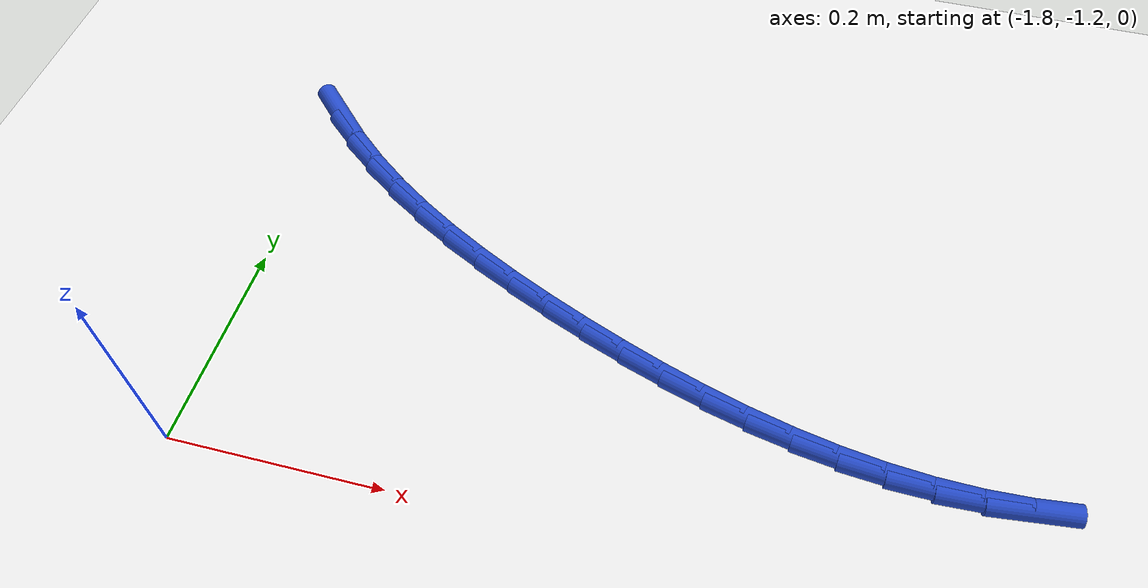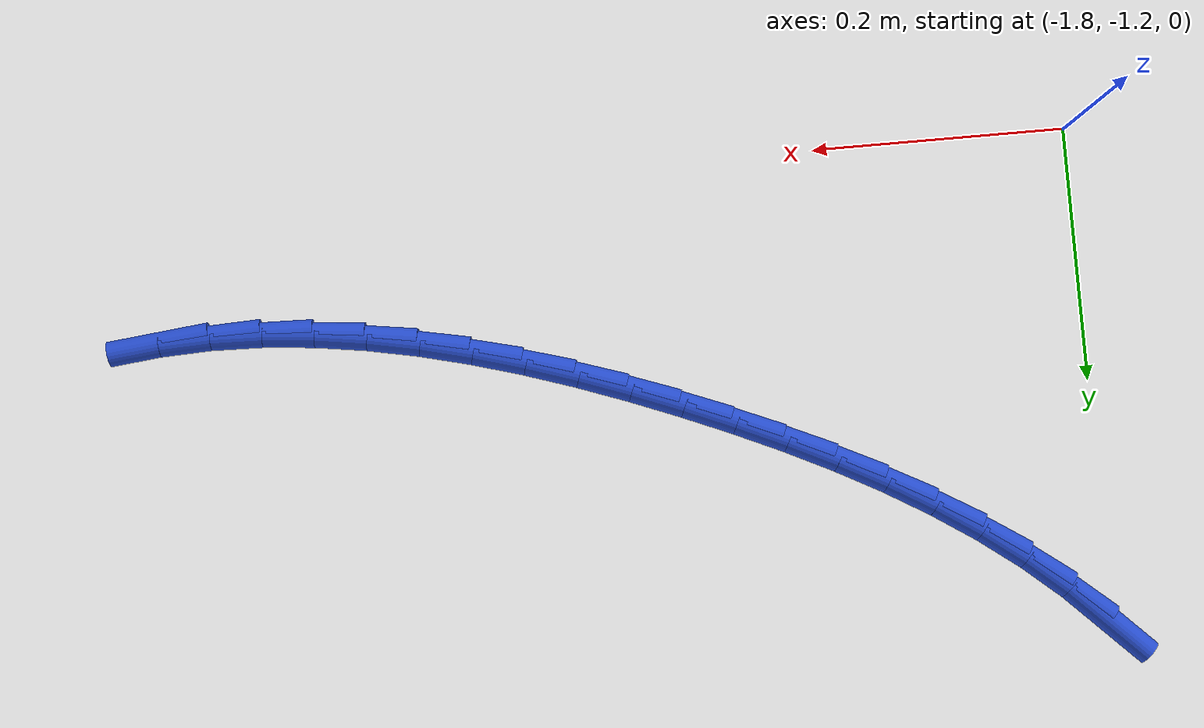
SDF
<sdf version="1.6">
 <world name="default">
  <model name="ground_plane">
   <static>1</static>
   <link name="link">
    <collision name="collision">
     <geometry><plane><normal>0 0 1</normal><size>100 100</size></plane></geometry>
     <surface><friction><ode><mu>100</mu><mu2>50</mu2></ode></friction></surface>
    </collision>
    <visual name="visual">
     <cast_shadows>0</cast_shadows>
     <geometry><plane><normal>0 0 1</normal><size>100 100</size></plane></geometry>
     <material>
      <script><uri>file://media/materials/scripts/gazebo.material</uri><name>Gazebo/WhiteGlow</name></script>
     </material>
    </visual>
   </link>
  </model>
  <model name="line">
   <link name="link_101">
    <pose>-1.7968484269513763 -0.8116748849108246 0.01 0 1.57 -0.7779558724061524</pose>
    <collision name="collision">
     <geometry><cylinder><radius>0.01</radius><length>0.08</length></cylinder></geometry>
    </collision>
    <visual name="visual">
     <material>
      <script><name>Gazebo/Blue</name><uri>file://media/materials/scripts/gazebo.material</uri></script>
     </material>
     <geometry><cylinder><radius>0.01</radius><length>0.08</length></cylinder></geometry>
    </visual>
   </link>
   <link name="link_102">
    <pose>-1.7681160434919756 -0.8399827504016025 0.01 0 1.57 -0.70516660313305</pose>
    <collision name="collision">
     <geometry><cylinder><radius>0.01</radius><length>0.08</length></cylinder></geometry>
    </collision>
    <visual name="visual">
     <material>
      <script><name>Gazebo/Blue</name><uri>file://media/materials/scripts/gazebo.material</uri></script>
     </material>
     <geometry><cylinder><radius>0.01</radius><length>0.08</length></cylinder></geometry>
    </visual>
   </link>
   <link name="link_103">
    <pose>-1.7371519355462206 -0.866338132994529 0.01 0 1.57 -0.640222848885145</pose>
    <collision name="collision">
     <geometry><cylinder><radius>0.01</radius><length>0.08</length></cylinder></geometry>
    </collision>
    <visual name="visual">
     <material>
      <script><name>Gazebo/Blue</name><uri>file://media/materials/scripts/gazebo.material</uri></script>
     </material>
     <geometry><cylinder><radius>0.01</radius><length>0.08</length></cylinder></geometry>
    </visual>
   </link>
   <link name="link_104">
    <pose>-1.7042062184254867 -0.8908790769140145 0.01 0 1.57 -0.5829227204319741</pose>
    <collision name="collision">
     <geometry><cylinder><radius>0.01</radius><length>0.08</length></cylinder></geometry>
    </collision>
    <visual name="visual">
     <material>
      <script><name>Gazebo/Blue</name><uri>file://media/materials/scripts/gazebo.material</uri></script>
     </material>
     <geometry><cylinder><radius>0.01</radius><length>0.08</length></cylinder></geometry>
    </visual>
   </link>
   <link name="link_105">
    <pose>-1.669529007441149 -0.9137436263844687 0.01 0 1.57 -0.532882932040719</pose>
    <collision name="collision">
     <geometry><cylinder><radius>0.01</radius><length>0.08</length></cylinder></geometry>
    </collision>
    <visual name="visual">
     <material>
      <script><name>Gazebo/Blue</name><uri>file://media/materials/scripts/gazebo.material</uri></script>
     </material>
     <geometry><cylinder><radius>0.01</radius><length>0.08</length></cylinder></geometry>
    </visual>
   </link>
   <link name="link_106">
    <pose>-1.6333704179045838 -0.9350698256303025 0.01 0 1.57 -0.48963740685423895</pose>
    <collision name="collision">
     <geometry><cylinder><radius>0.01</radius><length>0.08</length></cylinder></geometry>
    </collision>
    <visual name="visual">
     <material>
      <script><name>Gazebo/Blue</name><uri>file://media/materials/scripts/gazebo.material</uri></script>
     </material>
     <geometry><cylinder><radius>0.01</radius><length>0.08</length></cylinder></geometry>
    </visual>
   </link>
   <link name="link_107">
    <pose>-1.5959805651271677 -0.9549957188759254 0.01 0 1.57 -0.4527080439117348</pose>
    <collision name="collision">
     <geometry><cylinder><radius>0.01</radius><length>0.08</length></cylinder></geometry>
    </collision>
    <visual name="visual">
     <material>
      <script><name>Gazebo/Blue</name><uri>file://media/materials/scripts/gazebo.material</uri></script>
     </material>
     <geometry><cylinder><radius>0.01</radius><length>0.08</length></cylinder></geometry>
    </visual>
   </link>
   <link name="link_108">
    <pose>-1.5576095644202756 -0.9736593503457479 0.01 0 1.57 -0.4216516423237948</pose>
    <collision name="collision">
     <geometry><cylinder><radius>0.01</radius><length>0.08</length></cylinder></geometry>
    </collision>
    <visual name="visual">
     <material>
      <script><name>Gazebo/Blue</name><uri>file://media/materials/scripts/gazebo.material</uri></script>
     </material>
     <geometry><cylinder><radius>0.01</radius><length>0.08</length></cylinder></geometry>
    </visual>
   </link>
   <link name="link_109">
    <pose>-1.5185075310952838 -0.9911987642641799 0.01 0 1.57 -0.39608022340894494</pose>
    <collision name="collision">
     <geometry><cylinder><radius>0.01</radius><length>0.08</length></cylinder></geometry>
    </collision>
    <visual name="visual">
     <material>
      <script><name>Gazebo/Blue</name><uri>file://media/materials/scripts/gazebo.material</uri></script>
     </material>
     <geometry><cylinder><radius>0.01</radius><length>0.08</length></cylinder></geometry>
    </visual>
   </link>
   <link name="link_110">
    <pose>-1.4789243718484033 -1.0077516651167628 0.01 0 1.57 -0.37319863806290704</pose>
    <collision name="collision">
     <geometry><cylinder><radius>0.01</radius><length>0.08</length></cylinder></geometry>
    </collision>
    <visual name="visual">
     <material>
      <script><name>Gazebo/Blue</name><uri>file://media/materials/scripts/gazebo.material</uri></script>
     </material>
     <geometry><cylinder><radius>0.01</radius><length>0.08</length></cylinder></geometry>
    </visual>
   </link>
   <link name="link_111">
    <pose>-1.4390531302201603 -1.0233631532669176 0.01 0 1.57 -0.34691052792342947</pose>
    <collision name="collision">
     <geometry><cylinder><radius>0.01</radius><length>0.08</length></cylinder></geometry>
    </collision>
    <visual name="visual">
     <material>
      <script><name>Gazebo/Blue</name><uri>file://media/materials/scripts/gazebo.material</uri></script>
     </material>
     <geometry><cylinder><radius>0.01</radius><length>0.08</length></cylinder></geometry>
    </visual>
   </link>
   <link name="link_112">
    <pose>-1.3989531288362889 -1.0378605587525356 0.01 0 1.57 -0.31615165141479223</pose>
    <collision name="collision">
     <geometry><cylinder><radius>0.01</radius><length>0.08</length></cylinder></geometry>
    </collision>
    <visual name="visual">
     <material>
      <script><name>Gazebo/Blue</name><uri>file://media/materials/scripts/gazebo.material</uri></script>
     </material>
     <geometry><cylinder><radius>0.01</radius><length>0.08</length></cylinder></geometry>
    </visual>
   </link>
   <link name="link_113">
    <pose>-1.3586644851451632 -1.0510399351449127 0.01 0 1.57 -0.280674094483093</pose>
    <collision name="collision">
     <geometry><cylinder><radius>0.01</radius><length>0.08</length></cylinder></geometry>
    </collision>
    <visual name="visual">
     <material>
      <script><name>Gazebo/Blue</name><uri>file://media/materials/scripts/gazebo.material</uri></script>
     </material>
     <geometry><cylinder><radius>0.01</radius><length>0.08</length></cylinder></geometry>
    </visual>
   </link>
   <link name="link_114">
    <pose>-1.318227316595157 -1.0626973360153429 0.01 0 1.57 -0.2402163827807436</pose>
    <collision name="collision">
     <geometry><cylinder><radius>0.01</radius><length>0.08</length></cylinder></geometry>
    </collision>
    <visual name="visual">
     <material>
      <script><name>Gazebo/Blue</name><uri>file://media/materials/scripts/gazebo.material</uri></script>
     </material>
     <geometry><cylinder><radius>0.01</radius><length>0.08</length></cylinder></geometry>
    </visual>
   </link>
   <link name="link_115">
    <pose>-1.2776817406346457 -1.0726288149351215 0.01 0 1.57 -0.19452538001106867</pose>
    <collision name="collision">
     <geometry><cylinder><radius>0.01</radius><length>0.08</length></cylinder></geometry>
    </collision>
    <visual name="visual">
     <material>
      <script><name>Gazebo/Blue</name><uri>file://media/materials/scripts/gazebo.material</uri></script>
     </material>
     <geometry><cylinder><radius>0.01</radius><length>0.08</length></cylinder></geometry>
    </visual>
   </link>
   <link name="link_116">
    <pose>-1.237067874712002 -1.0806304254755426 0.01 0 1.57 -0.14338668228850546</pose>
    <collision name="collision">
     <geometry><cylinder><radius>0.01</radius><length>0.08</length></cylinder></geometry>
    </collision>
    <visual name="visual">
     <material>
      <script><name>Gazebo/Blue</name><uri>file://media/materials/scripts/gazebo.material</uri></script>
     </material>
     <geometry><cylinder><radius>0.01</radius><length>0.08</length></cylinder></geometry>
    </visual>
   </link>
   <link name="link_117">
    <pose>-1.1964258362756037 -1.086498221207902 0.01 0 1.57 -0.08666463739486656</pose>
    <collision name="collision">
     <geometry><cylinder><radius>0.01</radius><length>0.08</length></cylinder></geometry>
    </collision>
    <visual name="visual">
     <material>
      <script><name>Gazebo/Blue</name><uri>file://media/materials/scripts/gazebo.material</uri></script>
     </material>
     <geometry><cylinder><radius>0.01</radius><length>0.08</length></cylinder></geometry>
    </visual>
   </link>
   <link name="link_118">
    <pose>-1.1557957427738235 -1.090028255703494 0.01 0 1.57 -0.024351390126875847</pose>
    <collision name="collision">
     <geometry><cylinder><radius>0.01</radius><length>0.08</length></cylinder></geometry>
    </collision>
    <visual name="visual">
     <material>
      <script><name>Gazebo/Blue</name><uri>file://media/materials/scripts/gazebo.material</uri></script>
     </material>
     <geometry><cylinder><radius>0.01</radius><length>0.08</length></cylinder></geometry>
    </visual>
   </link>
   <link name="link_119">
    <pose>-1.1152177116550361 -1.0910165825336133 0.01 0 1.57 0.04277048323334835</pose>
    <collision name="collision">
     <geometry><cylinder><radius>0.01</radius><length>0.08</length></cylinder></geometry>
    </collision>
    <visual name="visual">
     <material>
      <script><name>Gazebo/Blue</name><uri>file://media/materials/scripts/gazebo.material</uri></script>
     </material>
     <geometry><cylinder><radius>0.01</radius><length>0.08</length></cylinder></geometry>
    </visual>
   </link>
   <link name="link_120">
    <pose>-1.0747308195872312 -1.0892838819150807 0.01 0 1.57 0.10824050447335014</pose>
    <collision name="collision">
     <geometry><cylinder><radius>0.01</radius><length>0.08</length></cylinder></geometry>
    </collision>
    <visual name="visual">
     <material>
      <script><name>Gazebo/Blue</name><uri>file://media/materials/scripts/gazebo.material</uri></script>
     </material>
     <geometry><cylinder><radius>0.01</radius><length>0.08</length></cylinder></geometry>
    </visual>
   </link>
  </model>
 </world>
</sdf>
